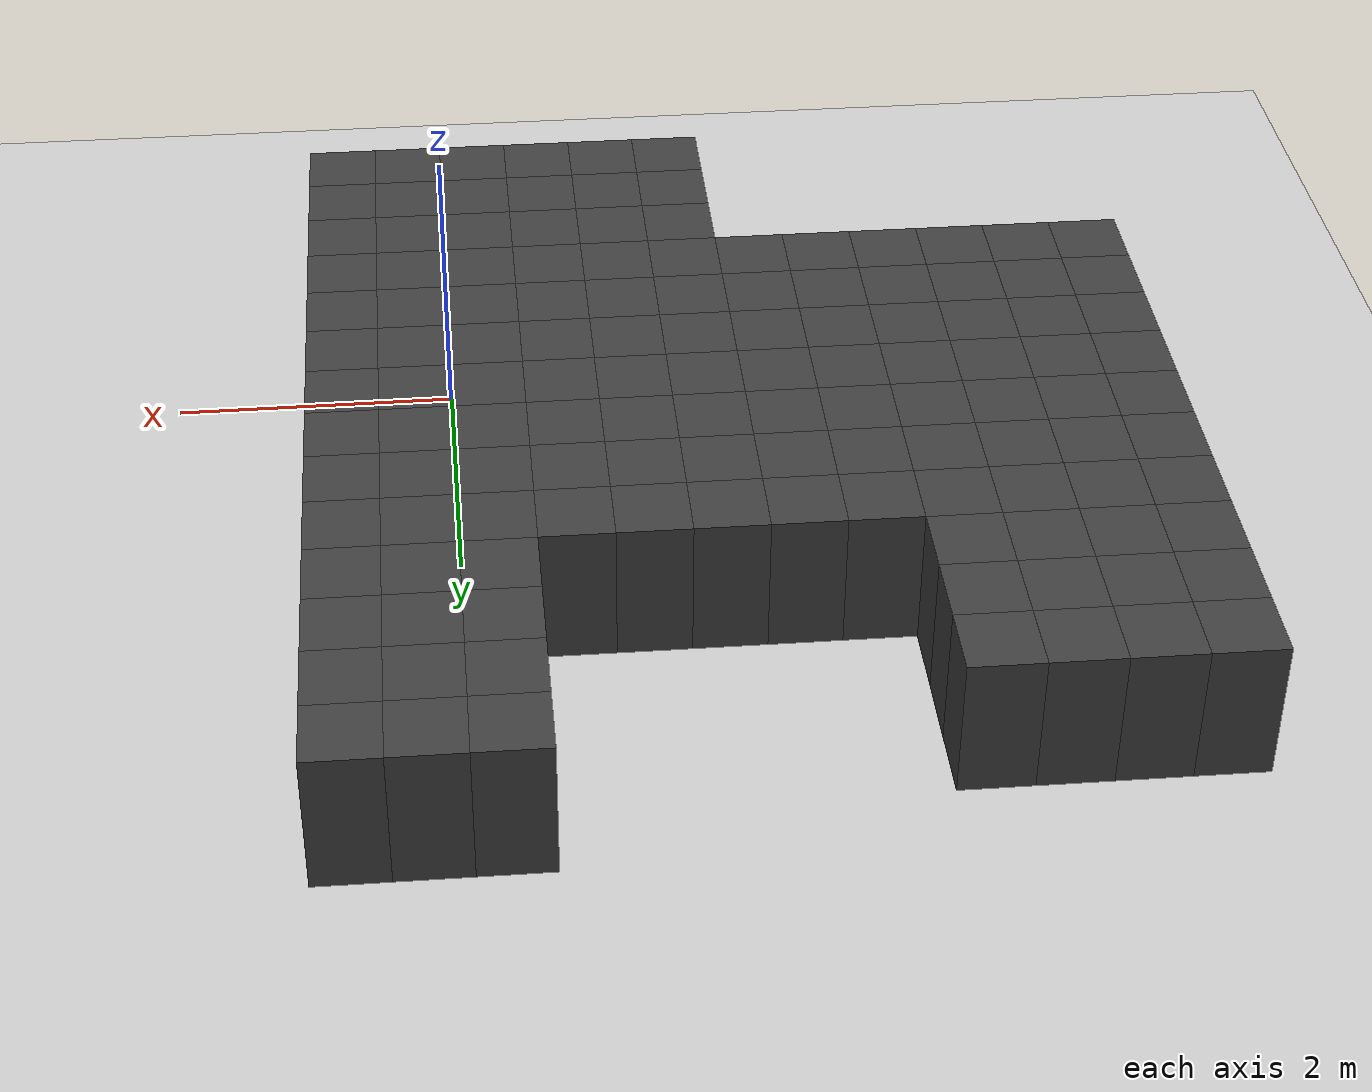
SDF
<sdf version="1.7">
 <world name="map_14495">
  <model name="ground_plane">
   <static>true</static>
   <link name="link">
    <collision name="collision">
     <geometry><plane><normal>0 0 1</normal><size>200 200</size></plane></geometry>
    </collision>
    <visual name="visual">
     <geometry><plane><normal>0 0 1</normal><size>200 200</size></plane></geometry>
     <material><ambient>0.8 0.8 0.8 1</ambient><diffuse>0.8 0.8 0.8 1</diffuse></material>
    </visual>
   </link>
  </model>
  <model name="maze_environment">
   <static>true</static>
   <link name="wall_572">
    <pose>-0.250 4.750 0.500 0 0 0</pose>
    <collision name="col"><geometry><box><size>0.5 0.5 1.0</size></box></geometry></collision>
    <visual name="vis">
     <geometry><box><size>0.5 0.5 1.0</size></box></geometry>
     <material><ambient>0.15 0.15 0.15 1</ambient><diffuse>0.25 0.25 0.25 1</diffuse></material>
    </visual>
   </link>
   <link name="wall_573">
    <pose>0.250 4.750 0.500 0 0 0</pose>
    <collision name="col"><geometry><box><size>0.5 0.5 1.0</size></box></geometry></collision>
    <visual name="vis">
     <geometry><box><size>0.5 0.5 1.0</size></box></geometry>
     <material><ambient>0.15 0.15 0.15 1</ambient><diffuse>0.25 0.25 0.25 1</diffuse></material>
    </visual>
   </link>
   <link name="wall_574">
    <pose>0.750 4.750 0.500 0 0 0</pose>
    <collision name="col"><geometry><box><size>0.5 0.5 1.0</size></box></geometry></collision>
    <visual name="vis">
     <geometry><box><size>0.5 0.5 1.0</size></box></geometry>
     <material><ambient>0.15 0.15 0.15 1</ambient><diffuse>0.25 0.25 0.25 1</diffuse></material>
    </visual>
   </link>
   <link name="wall_604">
    <pose>-4.750 4.250 0.500 0 0 0</pose>
    <collision name="col"><geometry><box><size>0.5 0.5 1.0</size></box></geometry></collision>
    <visual name="vis">
     <geometry><box><size>0.5 0.5 1.0</size></box></geometry>
     <material><ambient>0.15 0.15 0.15 1</ambient><diffuse>0.25 0.25 0.25 1</diffuse></material>
    </visual>
   </link>
   <link name="wall_605">
    <pose>-4.250 4.250 0.500 0 0 0</pose>
    <collision name="col"><geometry><box><size>0.5 0.5 1.0</size></box></geometry></collision>
    <visual name="vis">
     <geometry><box><size>0.5 0.5 1.0</size></box></geometry>
     <material><ambient>0.15 0.15 0.15 1</ambient><diffuse>0.25 0.25 0.25 1</diffuse></material>
    </visual>
   </link>
   <link name="wall_606">
    <pose>-3.750 4.250 0.500 0 0 0</pose>
    <collision name="col"><geometry><box><size>0.5 0.5 1.0</size></box></geometry></collision>
    <visual name="vis">
     <geometry><box><size>0.5 0.5 1.0</size></box></geometry>
     <material><ambient>0.15 0.15 0.15 1</ambient><diffuse>0.25 0.25 0.25 1</diffuse></material>
    </visual>
   </link>
   <link name="wall_607">
    <pose>-3.250 4.250 0.500 0 0 0</pose>
    <collision name="col"><geometry><box><size>0.5 0.5 1.0</size></box></geometry></collision>
    <visual name="vis">
     <geometry><box><size>0.5 0.5 1.0</size></box></geometry>
     <material><ambient>0.15 0.15 0.15 1</ambient><diffuse>0.25 0.25 0.25 1</diffuse></material>
    </visual>
   </link>
   <link name="wall_608">
    <pose>-0.250 4.250 0.500 0 0 0</pose>
    <collision name="col"><geometry><box><size>0.5 0.5 1.0</size></box></geometry></collision>
    <visual name="vis">
     <geometry><box><size>0.5 0.5 1.0</size></box></geometry>
     <material><ambient>0.15 0.15 0.15 1</ambient><diffuse>0.25 0.25 0.25 1</diffuse></material>
    </visual>
   </link>
   <link name="wall_609">
    <pose>0.250 4.250 0.500 0 0 0</pose>
    <collision name="col"><geometry><box><size>0.5 0.5 1.0</size></box></geometry></collision>
    <visual name="vis">
     <geometry><box><size>0.5 0.5 1.0</size></box></geometry>
     <material><ambient>0.15 0.15 0.15 1</ambient><diffuse>0.25 0.25 0.25 1</diffuse></material>
    </visual>
   </link>
   <link name="wall_610">
    <pose>0.750 4.250 0.500 0 0 0</pose>
    <collision name="col"><geometry><box><size>0.5 0.5 1.0</size></box></geometry></collision>
    <visual name="vis">
     <geometry><box><size>0.5 0.5 1.0</size></box></geometry>
     <material><ambient>0.15 0.15 0.15 1</ambient><diffuse>0.25 0.25 0.25 1</diffuse></material>
    </visual>
   </link>
   <link name="wall_641">
    <pose>-4.750 3.750 0.500 0 0 0</pose>
    <collision name="col"><geometry><box><size>0.5 0.5 1.0</size></box></geometry></collision>
    <visual name="vis">
     <geometry><box><size>0.5 0.5 1.0</size></box></geometry>
     <material><ambient>0.15 0.15 0.15 1</ambient><diffuse>0.25 0.25 0.25 1</diffuse></material>
    </visual>
   </link>
   <link name="wall_642">
    <pose>-4.250 3.750 0.500 0 0 0</pose>
    <collision name="col"><geometry><box><size>0.5 0.5 1.0</size></box></geometry></collision>
    <visual name="vis">
     <geometry><box><size>0.5 0.5 1.0</size></box></geometry>
     <material><ambient>0.15 0.15 0.15 1</ambient><diffuse>0.25 0.25 0.25 1</diffuse></material>
    </visual>
   </link>
   <link name="wall_643">
    <pose>-3.750 3.750 0.500 0 0 0</pose>
    <collision name="col"><geometry><box><size>0.5 0.5 1.0</size></box></geometry></collision>
    <visual name="vis">
     <geometry><box><size>0.5 0.5 1.0</size></box></geometry>
     <material><ambient>0.15 0.15 0.15 1</ambient><diffuse>0.25 0.25 0.25 1</diffuse></material>
    </visual>
   </link>
   <link name="wall_644">
    <pose>-3.250 3.750 0.500 0 0 0</pose>
    <collision name="col"><geometry><box><size>0.5 0.5 1.0</size></box></geometry></collision>
    <visual name="vis">
     <geometry><box><size>0.5 0.5 1.0</size></box></geometry>
     <material><ambient>0.15 0.15 0.15 1</ambient><diffuse>0.25 0.25 0.25 1</diffuse></material>
    </visual>
   </link>
   <link name="wall_645">
    <pose>-0.250 3.750 0.500 0 0 0</pose>
    <collision name="col"><geometry><box><size>0.5 0.5 1.0</size></box></geometry></collision>
    <visual name="vis">
     <geometry><box><size>0.5 0.5 1.0</size></box></geometry>
     <material><ambient>0.15 0.15 0.15 1</ambient><diffuse>0.25 0.25 0.25 1</diffuse></material>
    </visual>
   </link>
   <link name="wall_646">
    <pose>0.250 3.750 0.500 0 0 0</pose>
    <collision name="col"><geometry><box><size>0.5 0.5 1.0</size></box></geometry></collision>
    <visual name="vis">
     <geometry><box><size>0.5 0.5 1.0</size></box></geometry>
     <material><ambient>0.15 0.15 0.15 1</ambient><diffuse>0.25 0.25 0.25 1</diffuse></material>
    </visual>
   </link>
   <link name="wall_647">
    <pose>0.750 3.750 0.500 0 0 0</pose>
    <collision name="col"><geometry><box><size>0.5 0.5 1.0</size></box></geometry></collision>
    <visual name="vis">
     <geometry><box><size>0.5 0.5 1.0</size></box></geometry>
     <material><ambient>0.15 0.15 0.15 1</ambient><diffuse>0.25 0.25 0.25 1</diffuse></material>
    </visual>
   </link>
   <link name="wall_680">
    <pose>-4.750 3.250 0.500 0 0 0</pose>
    <collision name="col"><geometry><box><size>0.5 0.5 1.0</size></box></geometry></collision>
    <visual name="vis">
     <geometry><box><size>0.5 0.5 1.0</size></box></geometry>
     <material><ambient>0.15 0.15 0.15 1</ambient><diffuse>0.25 0.25 0.25 1</diffuse></material>
    </visual>
   </link>
   <link name="wall_681">
    <pose>-4.250 3.250 0.500 0 0 0</pose>
    <collision name="col"><geometry><box><size>0.5 0.5 1.0</size></box></geometry></collision>
    <visual name="vis">
     <geometry><box><size>0.5 0.5 1.0</size></box></geometry>
     <material><ambient>0.15 0.15 0.15 1</ambient><diffuse>0.25 0.25 0.25 1</diffuse></material>
    </visual>
   </link>
   <link name="wall_682">
    <pose>-3.750 3.250 0.500 0 0 0</pose>
    <collision name="col"><geometry><box><size>0.5 0.5 1.0</size></box></geometry></collision>
    <visual name="vis">
     <geometry><box><size>0.5 0.5 1.0</size></box></geometry>
     <material><ambient>0.15 0.15 0.15 1</ambient><diffuse>0.25 0.25 0.25 1</diffuse></material>
    </visual>
   </link>
   <link name="wall_683">
    <pose>-3.250 3.250 0.500 0 0 0</pose>
    <collision name="col"><geometry><box><size>0.5 0.5 1.0</size></box></geometry></collision>
    <visual name="vis">
     <geometry><box><size>0.5 0.5 1.0</size></box></geometry>
     <material><ambient>0.15 0.15 0.15 1</ambient><diffuse>0.25 0.25 0.25 1</diffuse></material>
    </visual>
   </link>
   <link name="wall_684">
    <pose>-0.250 3.250 0.500 0 0 0</pose>
    <collision name="col"><geometry><box><size>0.5 0.5 1.0</size></box></geometry></collision>
    <visual name="vis">
     <geometry><box><size>0.5 0.5 1.0</size></box></geometry>
     <material><ambient>0.15 0.15 0.15 1</ambient><diffuse>0.25 0.25 0.25 1</diffuse></material>
    </visual>
   </link>
   <link name="wall_685">
    <pose>0.250 3.250 0.500 0 0 0</pose>
    <collision name="col"><geometry><box><size>0.5 0.5 1.0</size></box></geometry></collision>
    <visual name="vis">
     <geometry><box><size>0.5 0.5 1.0</size></box></geometry>
     <material><ambient>0.15 0.15 0.15 1</ambient><diffuse>0.25 0.25 0.25 1</diffuse></material>
    </visual>
   </link>
   <link name="wall_686">
    <pose>0.750 3.250 0.500 0 0 0</pose>
    <collision name="col"><geometry><box><size>0.5 0.5 1.0</size></box></geometry></collision>
    <visual name="vis">
     <geometry><box><size>0.5 0.5 1.0</size></box></geometry>
     <material><ambient>0.15 0.15 0.15 1</ambient><diffuse>0.25 0.25 0.25 1</diffuse></material>
    </visual>
   </link>
   <link name="wall_719">
    <pose>-4.750 2.750 0.500 0 0 0</pose>
    <collision name="col"><geometry><box><size>0.5 0.5 1.0</size></box></geometry></collision>
    <visual name="vis">
     <geometry><box><size>0.5 0.5 1.0</size></box></geometry>
     <material><ambient>0.15 0.15 0.15 1</ambient><diffuse>0.25 0.25 0.25 1</diffuse></material>
    </visual>
   </link>
   <link name="wall_720">
    <pose>-4.250 2.750 0.500 0 0 0</pose>
    <collision name="col"><geometry><box><size>0.5 0.5 1.0</size></box></geometry></collision>
    <visual name="vis">
     <geometry><box><size>0.5 0.5 1.0</size></box></geometry>
     <material><ambient>0.15 0.15 0.15 1</ambient><diffuse>0.25 0.25 0.25 1</diffuse></material>
    </visual>
   </link>
   <link name="wall_721">
    <pose>-3.750 2.750 0.500 0 0 0</pose>
    <collision name="col"><geometry><box><size>0.5 0.5 1.0</size></box></geometry></collision>
    <visual name="vis">
     <geometry><box><size>0.5 0.5 1.0</size></box></geometry>
     <material><ambient>0.15 0.15 0.15 1</ambient><diffuse>0.25 0.25 0.25 1</diffuse></material>
    </visual>
   </link>
   <link name="wall_722">
    <pose>-3.250 2.750 0.500 0 0 0</pose>
    <collision name="col"><geometry><box><size>0.5 0.5 1.0</size></box></geometry></collision>
    <visual name="vis">
     <geometry><box><size>0.5 0.5 1.0</size></box></geometry>
     <material><ambient>0.15 0.15 0.15 1</ambient><diffuse>0.25 0.25 0.25 1</diffuse></material>
    </visual>
   </link>
   <link name="wall_723">
    <pose>-2.750 2.750 0.500 0 0 0</pose>
    <collision name="col"><geometry><box><size>0.5 0.5 1.0</size></box></geometry></collision>
    <visual name="vis">
     <geometry><box><size>0.5 0.5 1.0</size></box></geometry>
     <material><ambient>0.15 0.15 0.15 1</ambient><diffuse>0.25 0.25 0.25 1</diffuse></material>
    </visual>
   </link>
   <link name="wall_724">
    <pose>-2.250 2.750 0.500 0 0 0</pose>
    <collision name="col"><geometry><box><size>0.5 0.5 1.0</size></box></geometry></collision>
    <visual name="vis">
     <geometry><box><size>0.5 0.5 1.0</size></box></geometry>
     <material><ambient>0.15 0.15 0.15 1</ambient><diffuse>0.25 0.25 0.25 1</diffuse></material>
    </visual>
   </link>
   <link name="wall_725">
    <pose>-1.750 2.750 0.500 0 0 0</pose>
    <collision name="col"><geometry><box><size>0.5 0.5 1.0</size></box></geometry></collision>
    <visual name="vis">
     <geometry><box><size>0.5 0.5 1.0</size></box></geometry>
     <material><ambient>0.15 0.15 0.15 1</ambient><diffuse>0.25 0.25 0.25 1</diffuse></material>
    </visual>
   </link>
   <link name="wall_726">
    <pose>-1.250 2.750 0.500 0 0 0</pose>
    <collision name="col"><geometry><box><size>0.5 0.5 1.0</size></box></geometry></collision>
    <visual name="vis">
     <geometry><box><size>0.5 0.5 1.0</size></box></geometry>
     <material><ambient>0.15 0.15 0.15 1</ambient><diffuse>0.25 0.25 0.25 1</diffuse></material>
    </visual>
   </link>
   <link name="wall_727">
    <pose>-0.750 2.750 0.500 0 0 0</pose>
    <collision name="col"><geometry><box><size>0.5 0.5 1.0</size></box></geometry></collision>
    <visual name="vis">
     <geometry><box><size>0.5 0.5 1.0</size></box></geometry>
     <material><ambient>0.15 0.15 0.15 1</ambient><diffuse>0.25 0.25 0.25 1</diffuse></material>
    </visual>
   </link>
   <link name="wall_728">
    <pose>-0.250 2.750 0.500 0 0 0</pose>
    <collision name="col"><geometry><box><size>0.5 0.5 1.0</size></box></geometry></collision>
    <visual name="vis">
     <geometry><box><size>0.5 0.5 1.0</size></box></geometry>
     <material><ambient>0.15 0.15 0.15 1</ambient><diffuse>0.25 0.25 0.25 1</diffuse></material>
    </visual>
   </link>
   <link name="wall_729">
    <pose>0.250 2.750 0.500 0 0 0</pose>
    <collision name="col"><geometry><box><size>0.5 0.5 1.0</size></box></geometry></collision>
    <visual name="vis">
     <geometry><box><size>0.5 0.5 1.0</size></box></geometry>
     <material><ambient>0.15 0.15 0.15 1</ambient><diffuse>0.25 0.25 0.25 1</diffuse></material>
    </visual>
   </link>
   <link name="wall_730">
    <pose>0.750 2.750 0.500 0 0 0</pose>
    <collision name="col"><geometry><box><size>0.5 0.5 1.0</size></box></geometry></collision>
    <visual name="vis">
     <geometry><box><size>0.5 0.5 1.0</size></box></geometry>
     <material><ambient>0.15 0.15 0.15 1</ambient><diffuse>0.25 0.25 0.25 1</diffuse></material>
    </visual>
   </link>
   <link name="wall_763">
    <pose>-4.750 2.250 0.500 0 0 0</pose>
    <collision name="col"><geometry><box><size>0.5 0.5 1.0</size></box></geometry></collision>
    <visual name="vis">
     <geometry><box><size>0.5 0.5 1.0</size></box></geometry>
     <material><ambient>0.15 0.15 0.15 1</ambient><diffuse>0.25 0.25 0.25 1</diffuse></material>
    </visual>
   </link>
   <link name="wall_764">
    <pose>-4.250 2.250 0.500 0 0 0</pose>
    <collision name="col"><geometry><box><size>0.5 0.5 1.0</size></box></geometry></collision>
    <visual name="vis">
     <geometry><box><size>0.5 0.5 1.0</size></box></geometry>
     <material><ambient>0.15 0.15 0.15 1</ambient><diffuse>0.25 0.25 0.25 1</diffuse></material>
    </visual>
   </link>
   <link name="wall_765">
    <pose>-3.750 2.250 0.500 0 0 0</pose>
    <collision name="col"><geometry><box><size>0.5 0.5 1.0</size></box></geometry></collision>
    <visual name="vis">
     <geometry><box><size>0.5 0.5 1.0</size></box></geometry>
     <material><ambient>0.15 0.15 0.15 1</ambient><diffuse>0.25 0.25 0.25 1</diffuse></material>
    </visual>
   </link>
   <link name="wall_766">
    <pose>-3.250 2.250 0.500 0 0 0</pose>
    <collision name="col"><geometry><box><size>0.5 0.5 1.0</size></box></geometry></collision>
    <visual name="vis">
     <geometry><box><size>0.5 0.5 1.0</size></box></geometry>
     <material><ambient>0.15 0.15 0.15 1</ambient><diffuse>0.25 0.25 0.25 1</diffuse></material>
    </visual>
   </link>
   <link name="wall_767">
    <pose>-2.750 2.250 0.500 0 0 0</pose>
    <collision name="col"><geometry><box><size>0.5 0.5 1.0</size></box></geometry></collision>
    <visual name="vis">
     <geometry><box><size>0.5 0.5 1.0</size></box></geometry>
     <material><ambient>0.15 0.15 0.15 1</ambient><diffuse>0.25 0.25 0.25 1</diffuse></material>
    </visual>
   </link>
   <link name="wall_768">
    <pose>-2.250 2.250 0.500 0 0 0</pose>
    <collision name="col"><geometry><box><size>0.5 0.5 1.0</size></box></geometry></collision>
    <visual name="vis">
     <geometry><box><size>0.5 0.5 1.0</size></box></geometry>
     <material><ambient>0.15 0.15 0.15 1</ambient><diffuse>0.25 0.25 0.25 1</diffuse></material>
    </visual>
   </link>
   <link name="wall_769">
    <pose>-1.750 2.250 0.500 0 0 0</pose>
    <collision name="col"><geometry><box><size>0.5 0.5 1.0</size></box></geometry></collision>
    <visual name="vis">
     <geometry><box><size>0.5 0.5 1.0</size></box></geometry>
     <material><ambient>0.15 0.15 0.15 1</ambient><diffuse>0.25 0.25 0.25 1</diffuse></material>
    </visual>
   </link>
   <link name="wall_770">
    <pose>-1.250 2.250 0.500 0 0 0</pose>
    <collision name="col"><geometry><box><size>0.5 0.5 1.0</size></box></geometry></collision>
    <visual name="vis">
     <geometry><box><size>0.5 0.5 1.0</size></box></geometry>
     <material><ambient>0.15 0.15 0.15 1</ambient><diffuse>0.25 0.25 0.25 1</diffuse></material>
    </visual>
   </link>
   <link name="wall_771">
    <pose>-0.750 2.250 0.500 0 0 0</pose>
    <collision name="col"><geometry><box><size>0.5 0.5 1.0</size></box></geometry></collision>
    <visual name="vis">
     <geometry><box><size>0.5 0.5 1.0</size></box></geometry>
     <material><ambient>0.15 0.15 0.15 1</ambient><diffuse>0.25 0.25 0.25 1</diffuse></material>
    </visual>
   </link>
   <link name="wall_772">
    <pose>-0.250 2.250 0.500 0 0 0</pose>
    <collision name="col"><geometry><box><size>0.5 0.5 1.0</size></box></geometry></collision>
    <visual name="vis">
     <geometry><box><size>0.5 0.5 1.0</size></box></geometry>
     <material><ambient>0.15 0.15 0.15 1</ambient><diffuse>0.25 0.25 0.25 1</diffuse></material>
    </visual>
   </link>
   <link name="wall_773">
    <pose>0.250 2.250 0.500 0 0 0</pose>
    <collision name="col"><geometry><box><size>0.5 0.5 1.0</size></box></geometry></collision>
    <visual name="vis">
     <geometry><box><size>0.5 0.5 1.0</size></box></geometry>
     <material><ambient>0.15 0.15 0.15 1</ambient><diffuse>0.25 0.25 0.25 1</diffuse></material>
    </visual>
   </link>
   <link name="wall_774">
    <pose>0.750 2.250 0.500 0 0 0</pose>
    <collision name="col"><geometry><box><size>0.5 0.5 1.0</size></box></geometry></collision>
    <visual name="vis">
     <geometry><box><size>0.5 0.5 1.0</size></box></geometry>
     <material><ambient>0.15 0.15 0.15 1</ambient><diffuse>0.25 0.25 0.25 1</diffuse></material>
    </visual>
   </link>
   <link name="wall_807">
    <pose>-4.750 1.750 0.500 0 0 0</pose>
    <collision name="col"><geometry><box><size>0.5 0.5 1.0</size></box></geometry></collision>
    <visual name="vis">
     <geometry><box><size>0.5 0.5 1.0</size></box></geometry>
     <material><ambient>0.15 0.15 0.15 1</ambient><diffuse>0.25 0.25 0.25 1</diffuse></material>
    </visual>
   </link>
   <link name="wall_808">
    <pose>-4.250 1.750 0.500 0 0 0</pose>
    <collision name="col"><geometry><box><size>0.5 0.5 1.0</size></box></geometry></collision>
    <visual name="vis">
     <geometry><box><size>0.5 0.5 1.0</size></box></geometry>
     <material><ambient>0.15 0.15 0.15 1</ambient><diffuse>0.25 0.25 0.25 1</diffuse></material>
    </visual>
   </link>
   <link name="wall_809">
    <pose>-3.750 1.750 0.500 0 0 0</pose>
    <collision name="col"><geometry><box><size>0.5 0.5 1.0</size></box></geometry></collision>
    <visual name="vis">
     <geometry><box><size>0.5 0.5 1.0</size></box></geometry>
     <material><ambient>0.15 0.15 0.15 1</ambient><diffuse>0.25 0.25 0.25 1</diffuse></material>
    </visual>
   </link>
   <link name="wall_810">
    <pose>-3.250 1.750 0.500 0 0 0</pose>
    <collision name="col"><geometry><box><size>0.5 0.5 1.0</size></box></geometry></collision>
    <visual name="vis">
     <geometry><box><size>0.5 0.5 1.0</size></box></geometry>
     <material><ambient>0.15 0.15 0.15 1</ambient><diffuse>0.25 0.25 0.25 1</diffuse></material>
    </visual>
   </link>
   <link name="wall_811">
    <pose>-2.750 1.750 0.500 0 0 0</pose>
    <collision name="col"><geometry><box><size>0.5 0.5 1.0</size></box></geometry></collision>
    <visual name="vis">
     <geometry><box><size>0.5 0.5 1.0</size></box></geometry>
     <material><ambient>0.15 0.15 0.15 1</ambient><diffuse>0.25 0.25 0.25 1</diffuse></material>
    </visual>
   </link>
   <link name="wall_812">
    <pose>-2.250 1.750 0.500 0 0 0</pose>
    <collision name="col"><geometry><box><size>0.5 0.5 1.0</size></box></geometry></collision>
    <visual name="vis">
     <geometry><box><size>0.5 0.5 1.0</size></box></geometry>
     <material><ambient>0.15 0.15 0.15 1</ambient><diffuse>0.25 0.25 0.25 1</diffuse></material>
    </visual>
   </link>
   <link name="wall_813">
    <pose>-1.750 1.750 0.500 0 0 0</pose>
    <collision name="col"><geometry><box><size>0.5 0.5 1.0</size></box></geometry></collision>
    <visual name="vis">
     <geometry><box><size>0.5 0.5 1.0</size></box></geometry>
     <material><ambient>0.15 0.15 0.15 1</ambient><diffuse>0.25 0.25 0.25 1</diffuse></material>
    </visual>
   </link>
   <link name="wall_814">
    <pose>-1.250 1.750 0.500 0 0 0</pose>
    <collision name="col"><geometry><box><size>0.5 0.5 1.0</size></box></geometry></collision>
    <visual name="vis">
     <geometry><box><size>0.5 0.5 1.0</size></box></geometry>
     <material><ambient>0.15 0.15 0.15 1</ambient><diffuse>0.25 0.25 0.25 1</diffuse></material>
    </visual>
   </link>
   <link name="wall_815">
    <pose>-0.750 1.750 0.500 0 0 0</pose>
    <collision name="col"><geometry><box><size>0.5 0.5 1.0</size></box></geometry></collision>
    <visual name="vis">
     <geometry><box><size>0.5 0.5 1.0</size></box></geometry>
     <material><ambient>0.15 0.15 0.15 1</ambient><diffuse>0.25 0.25 0.25 1</diffuse></material>
    </visual>
   </link>
   <link name="wall_816">
    <pose>-0.250 1.750 0.500 0 0 0</pose>
    <collision name="col"><geometry><box><size>0.5 0.5 1.0</size></box></geometry></collision>
    <visual name="vis">
     <geometry><box><size>0.5 0.5 1.0</size></box></geometry>
     <material><ambient>0.15 0.15 0.15 1</ambient><diffuse>0.25 0.25 0.25 1</diffuse></material>
    </visual>
   </link>
   <link name="wall_817">
    <pose>0.250 1.750 0.500 0 0 0</pose>
    <collision name="col"><geometry><box><size>0.5 0.5 1.0</size></box></geometry></collision>
    <visual name="vis">
     <geometry><box><size>0.5 0.5 1.0</size></box></geometry>
     <material><ambient>0.15 0.15 0.15 1</ambient><diffuse>0.25 0.25 0.25 1</diffuse></material>
    </visual>
   </link>
   <link name="wall_818">
    <pose>0.750 1.750 0.500 0 0 0</pose>
    <collision name="col"><geometry><box><size>0.5 0.5 1.0</size></box></geometry></collision>
    <visual name="vis">
     <geometry><box><size>0.5 0.5 1.0</size></box></geometry>
     <material><ambient>0.15 0.15 0.15 1</ambient><diffuse>0.25 0.25 0.25 1</diffuse></material>
    </visual>
   </link>
   <link name="wall_841">
    <pose>-4.750 1.250 0.500 0 0 0</pose>
    <collision name="col"><geometry><box><size>0.5 0.5 1.0</size></box></geometry></collision>
    <visual name="vis">
     <geometry><box><size>0.5 0.5 1.0</size></box></geometry>
     <material><ambient>0.15 0.15 0.15 1</ambient><diffuse>0.25 0.25 0.25 1</diffuse></material>
    </visual>
   </link>
   <link name="wall_842">
    <pose>-4.250 1.250 0.500 0 0 0</pose>
    <collision name="col"><geometry><box><size>0.5 0.5 1.0</size></box></geometry></collision>
    <visual name="vis">
     <geometry><box><size>0.5 0.5 1.0</size></box></geometry>
     <material><ambient>0.15 0.15 0.15 1</ambient><diffuse>0.25 0.25 0.25 1</diffuse></material>
    </visual>
   </link>
   <link name="wall_843">
    <pose>-3.750 1.250 0.500 0 0 0</pose>
    <collision name="col"><geometry><box><size>0.5 0.5 1.0</size></box></geometry></collision>
    <visual name="vis">
     <geometry><box><size>0.5 0.5 1.0</size></box></geometry>
     <material><ambient>0.15 0.15 0.15 1</ambient><diffuse>0.25 0.25 0.25 1</diffuse></material>
    </visual>
   </link>
   <link name="wall_844">
    <pose>-3.250 1.250 0.500 0 0 0</pose>
    <collision name="col"><geometry><box><size>0.5 0.5 1.0</size></box></geometry></collision>
    <visual name="vis">
     <geometry><box><size>0.5 0.5 1.0</size></box></geometry>
     <material><ambient>0.15 0.15 0.15 1</ambient><diffuse>0.25 0.25 0.25 1</diffuse></material>
    </visual>
   </link>
   <link name="wall_845">
    <pose>-2.750 1.250 0.500 0 0 0</pose>
    <collision name="col"><geometry><box><size>0.5 0.5 1.0</size></box></geometry></collision>
    <visual name="vis">
     <geometry><box><size>0.5 0.5 1.0</size></box></geometry>
     <material><ambient>0.15 0.15 0.15 1</ambient><diffuse>0.25 0.25 0.25 1</diffuse></material>
    </visual>
   </link>
   <link name="wall_846">
    <pose>-2.250 1.250 0.500 0 0 0</pose>
    <collision name="col"><geometry><box><size>0.5 0.5 1.0</size></box></geometry></collision>
    <visual name="vis">
     <geometry><box><size>0.5 0.5 1.0</size></box></geometry>
     <material><ambient>0.15 0.15 0.15 1</ambient><diffuse>0.25 0.25 0.25 1</diffuse></material>
    </visual>
   </link>
   <link name="wall_847">
    <pose>-1.750 1.250 0.500 0 0 0</pose>
    <collision name="col"><geometry><box><size>0.5 0.5 1.0</size></box></geometry></collision>
    <visual name="vis">
     <geometry><box><size>0.5 0.5 1.0</size></box></geometry>
     <material><ambient>0.15 0.15 0.15 1</ambient><diffuse>0.25 0.25 0.25 1</diffuse></material>
    </visual>
   </link>
   <link name="wall_848">
    <pose>-1.250 1.250 0.500 0 0 0</pose>
    <collision name="col"><geometry><box><size>0.5 0.5 1.0</size></box></geometry></collision>
    <visual name="vis">
     <geometry><box><size>0.5 0.5 1.0</size></box></geometry>
     <material><ambient>0.15 0.15 0.15 1</ambient><diffuse>0.25 0.25 0.25 1</diffuse></material>
    </visual>
   </link>
   <link name="wall_849">
    <pose>-0.750 1.250 0.500 0 0 0</pose>
    <collision name="col"><geometry><box><size>0.5 0.5 1.0</size></box></geometry></collision>
    <visual name="vis">
     <geometry><box><size>0.5 0.5 1.0</size></box></geometry>
     <material><ambient>0.15 0.15 0.15 1</ambient><diffuse>0.25 0.25 0.25 1</diffuse></material>
    </visual>
   </link>
   <link name="wall_850">
    <pose>-0.250 1.250 0.500 0 0 0</pose>
    <collision name="col"><geometry><box><size>0.5 0.5 1.0</size></box></geometry></collision>
    <visual name="vis">
     <geometry><box><size>0.5 0.5 1.0</size></box></geometry>
     <material><ambient>0.15 0.15 0.15 1</ambient><diffuse>0.25 0.25 0.25 1</diffuse></material>
    </visual>
   </link>
   <link name="wall_851">
    <pose>0.250 1.250 0.500 0 0 0</pose>
    <collision name="col"><geometry><box><size>0.5 0.5 1.0</size></box></geometry></collision>
    <visual name="vis">
     <geometry><box><size>0.5 0.5 1.0</size></box></geometry>
     <material><ambient>0.15 0.15 0.15 1</ambient><diffuse>0.25 0.25 0.25 1</diffuse></material>
    </visual>
   </link>
   <link name="wall_852">
    <pose>0.750 1.250 0.500 0 0 0</pose>
    <collision name="col"><geometry><box><size>0.5 0.5 1.0</size></box></geometry></collision>
    <visual name="vis">
     <geometry><box><size>0.5 0.5 1.0</size></box></geometry>
     <material><ambient>0.15 0.15 0.15 1</ambient><diffuse>0.25 0.25 0.25 1</diffuse></material>
    </visual>
   </link>
   <link name="wall_875">
    <pose>-4.750 0.750 0.500 0 0 0</pose>
    <collision name="col"><geometry><box><size>0.5 0.5 1.0</size></box></geometry></collision>
    <visual name="vis">
     <geometry><box><size>0.5 0.5 1.0</size></box></geometry>
     <material><ambient>0.15 0.15 0.15 1</ambient><diffuse>0.25 0.25 0.25 1</diffuse></material>
    </visual>
   </link>
   <link name="wall_876">
    <pose>-4.250 0.750 0.500 0 0 0</pose>
    <collision name="col"><geometry><box><size>0.5 0.5 1.0</size></box></geometry></collision>
    <visual name="vis">
     <geometry><box><size>0.5 0.5 1.0</size></box></geometry>
     <material><ambient>0.15 0.15 0.15 1</ambient><diffuse>0.25 0.25 0.25 1</diffuse></material>
    </visual>
   </link>
   <link name="wall_877">
    <pose>-3.750 0.750 0.500 0 0 0</pose>
    <collision name="col"><geometry><box><size>0.5 0.5 1.0</size></box></geometry></collision>
    <visual name="vis">
     <geometry><box><size>0.5 0.5 1.0</size></box></geometry>
     <material><ambient>0.15 0.15 0.15 1</ambient><diffuse>0.25 0.25 0.25 1</diffuse></material>
    </visual>
   </link>
   <link name="wall_878">
    <pose>-3.250 0.750 0.500 0 0 0</pose>
    <collision name="col"><geometry><box><size>0.5 0.5 1.0</size></box></geometry></collision>
    <visual name="vis">
     <geometry><box><size>0.5 0.5 1.0</size></box></geometry>
     <material><ambient>0.15 0.15 0.15 1</ambient><diffuse>0.25 0.25 0.25 1</diffuse></material>
    </visual>
   </link>
   <link name="wall_879">
    <pose>-2.750 0.750 0.500 0 0 0</pose>
    <collision name="col"><geometry><box><size>0.5 0.5 1.0</size></box></geometry></collision>
    <visual name="vis">
     <geometry><box><size>0.5 0.5 1.0</size></box></geometry>
     <material><ambient>0.15 0.15 0.15 1</ambient><diffuse>0.25 0.25 0.25 1</diffuse></material>
    </visual>
   </link>
   <link name="wall_880">
    <pose>-2.250 0.750 0.500 0 0 0</pose>
    <collision name="col"><geometry><box><size>0.5 0.5 1.0</size></box></geometry></collision>
    <visual name="vis">
     <geometry><box><size>0.5 0.5 1.0</size></box></geometry>
     <material><ambient>0.15 0.15 0.15 1</ambient><diffuse>0.25 0.25 0.25 1</diffuse></material>
    </visual>
   </link>
   <link name="wall_881">
    <pose>-1.750 0.750 0.500 0 0 0</pose>
    <collision name="col"><geometry><box><size>0.5 0.5 1.0</size></box></geometry></collision>
    <visual name="vis">
     <geometry><box><size>0.5 0.5 1.0</size></box></geometry>
     <material><ambient>0.15 0.15 0.15 1</ambient><diffuse>0.25 0.25 0.25 1</diffuse></material>
    </visual>
   </link>
   <link name="wall_882">
    <pose>-1.250 0.750 0.500 0 0 0</pose>
    <collision name="col"><geometry><box><size>0.5 0.5 1.0</size></box></geometry></collision>
    <visual name="vis">
     <geometry><box><size>0.5 0.5 1.0</size></box></geometry>
     <material><ambient>0.15 0.15 0.15 1</ambient><diffuse>0.25 0.25 0.25 1</diffuse></material>
    </visual>
   </link>
   <link name="wall_883">
    <pose>-0.750 0.750 0.500 0 0 0</pose>
    <collision name="col"><geometry><box><size>0.5 0.5 1.0</size></box></geometry></collision>
    <visual name="vis">
     <geometry><box><size>0.5 0.5 1.0</size></box></geometry>
     <material><ambient>0.15 0.15 0.15 1</ambient><diffuse>0.25 0.25 0.25 1</diffuse></material>
    </visual>
   </link>
   <link name="wall_884">
    <pose>-0.250 0.750 0.500 0 0 0</pose>
    <collision name="col"><geometry><box><size>0.5 0.5 1.0</size></box></geometry></collision>
    <visual name="vis">
     <geometry><box><size>0.5 0.5 1.0</size></box></geometry>
     <material><ambient>0.15 0.15 0.15 1</ambient><diffuse>0.25 0.25 0.25 1</diffuse></material>
    </visual>
   </link>
   <link name="wall_885">
    <pose>0.250 0.750 0.500 0 0 0</pose>
    <collision name="col"><geometry><box><size>0.5 0.5 1.0</size></box></geometry></collision>
    <visual name="vis">
     <geometry><box><size>0.5 0.5 1.0</size></box></geometry>
     <material><ambient>0.15 0.15 0.15 1</ambient><diffuse>0.25 0.25 0.25 1</diffuse></material>
    </visual>
   </link>
   <link name="wall_886">
    <pose>0.750 0.750 0.500 0 0 0</pose>
    <collision name="col"><geometry><box><size>0.5 0.5 1.0</size></box></geometry></collision>
    <visual name="vis">
     <geometry><box><size>0.5 0.5 1.0</size></box></geometry>
     <material><ambient>0.15 0.15 0.15 1</ambient><diffuse>0.25 0.25 0.25 1</diffuse></material>
    </visual>
   </link>
   <link name="wall_914">
    <pose>-4.750 0.250 0.500 0 0 0</pose>
    <collision name="col"><geometry><box><size>0.5 0.5 1.0</size></box></geometry></collision>
    <visual name="vis">
     <geometry><box><size>0.5 0.5 1.0</size></box></geometry>
     <material><ambient>0.15 0.15 0.15 1</ambient><diffuse>0.25 0.25 0.25 1</diffuse></material>
    </visual>
   </link>
   <link name="wall_915">
    <pose>-4.250 0.250 0.500 0 0 0</pose>
    <collision name="col"><geometry><box><size>0.5 0.5 1.0</size></box></geometry></collision>
    <visual name="vis">
     <geometry><box><size>0.5 0.5 1.0</size></box></geometry>
     <material><ambient>0.15 0.15 0.15 1</ambient><diffuse>0.25 0.25 0.25 1</diffuse></material>
    </visual>
   </link>
   <link name="wall_916">
    <pose>-3.750 0.250 0.500 0 0 0</pose>
    <collision name="col"><geometry><box><size>0.5 0.5 1.0</size></box></geometry></collision>
    <visual name="vis">
     <geometry><box><size>0.5 0.5 1.0</size></box></geometry>
     <material><ambient>0.15 0.15 0.15 1</ambient><diffuse>0.25 0.25 0.25 1</diffuse></material>
    </visual>
   </link>
   <link name="wall_917">
    <pose>-3.250 0.250 0.500 0 0 0</pose>
    <collision name="col"><geometry><box><size>0.5 0.5 1.0</size></box></geometry></collision>
    <visual name="vis">
     <geometry><box><size>0.5 0.5 1.0</size></box></geometry>
     <material><ambient>0.15 0.15 0.15 1</ambient><diffuse>0.25 0.25 0.25 1</diffuse></material>
    </visual>
   </link>
   <link name="wall_918">
    <pose>-2.750 0.250 0.500 0 0 0</pose>
    <collision name="col"><geometry><box><size>0.5 0.5 1.0</size></box></geometry></collision>
    <visual name="vis">
     <geometry><box><size>0.5 0.5 1.0</size></box></geometry>
     <material><ambient>0.15 0.15 0.15 1</ambient><diffuse>0.25 0.25 0.25 1</diffuse></material>
    </visual>
   </link>
   <link name="wall_919">
    <pose>-2.250 0.250 0.500 0 0 0</pose>
    <collision name="col"><geometry><box><size>0.5 0.5 1.0</size></box></geometry></collision>
    <visual name="vis">
     <geometry><box><size>0.5 0.5 1.0</size></box></geometry>
     <material><ambient>0.15 0.15 0.15 1</ambient><diffuse>0.25 0.25 0.25 1</diffuse></material>
    </visual>
   </link>
   <link name="wall_920">
    <pose>-1.750 0.250 0.500 0 0 0</pose>
    <collision name="col"><geometry><box><size>0.5 0.5 1.0</size></box></geometry></collision>
    <visual name="vis">
     <geometry><box><size>0.5 0.5 1.0</size></box></geometry>
     <material><ambient>0.15 0.15 0.15 1</ambient><diffuse>0.25 0.25 0.25 1</diffuse></material>
    </visual>
   </link>
   <link name="wall_921">
    <pose>-1.250 0.250 0.500 0 0 0</pose>
    <collision name="col"><geometry><box><size>0.5 0.5 1.0</size></box></geometry></collision>
    <visual name="vis">
     <geometry><box><size>0.5 0.5 1.0</size></box></geometry>
     <material><ambient>0.15 0.15 0.15 1</ambient><diffuse>0.25 0.25 0.25 1</diffuse></material>
    </visual>
   </link>
   <link name="wall_922">
    <pose>-0.750 0.250 0.500 0 0 0</pose>
    <collision name="col"><geometry><box><size>0.5 0.5 1.0</size></box></geometry></collision>
    <visual name="vis">
     <geometry><box><size>0.5 0.5 1.0</size></box></geometry>
     <material><ambient>0.15 0.15 0.15 1</ambient><diffuse>0.25 0.25 0.25 1</diffuse></material>
    </visual>
   </link>
   <link name="wall_923">
    <pose>-0.250 0.250 0.500 0 0 0</pose>
    <collision name="col"><geometry><box><size>0.5 0.5 1.0</size></box></geometry></collision>
    <visual name="vis">
     <geometry><box><size>0.5 0.5 1.0</size></box></geometry>
     <material><ambient>0.15 0.15 0.15 1</ambient><diffuse>0.25 0.25 0.25 1</diffuse></material>
    </visual>
   </link>
   <link name="wall_924">
    <pose>0.250 0.250 0.500 0 0 0</pose>
    <collision name="col"><geometry><box><size>0.5 0.5 1.0</size></box></geometry></collision>
    <visual name="vis">
     <geometry><box><size>0.5 0.5 1.0</size></box></geometry>
     <material><ambient>0.15 0.15 0.15 1</ambient><diffuse>0.25 0.25 0.25 1</diffuse></material>
    </visual>
   </link>
   <link name="wall_925">
    <pose>0.750 0.250 0.500 0 0 0</pose>
    <collision name="col"><geometry><box><size>0.5 0.5 1.0</size></box></geometry></collision>
    <visual name="vis">
     <geometry><box><size>0.5 0.5 1.0</size></box></geometry>
     <material><ambient>0.15 0.15 0.15 1</ambient><diffuse>0.25 0.25 0.25 1</diffuse></material>
    </visual>
   </link>
   <link name="wall_948">
    <pose>-4.750 -0.250 0.500 0 0 0</pose>
    <collision name="col"><geometry><box><size>0.5 0.5 1.0</size></box></geometry></collision>
    <visual name="vis">
     <geometry><box><size>0.5 0.5 1.0</size></box></geometry>
     <material><ambient>0.15 0.15 0.15 1</ambient><diffuse>0.25 0.25 0.25 1</diffuse></material>
    </visual>
   </link>
   <link name="wall_949">
    <pose>-4.250 -0.250 0.500 0 0 0</pose>
    <collision name="col"><geometry><box><size>0.5 0.5 1.0</size></box></geometry></collision>
    <visual name="vis">
     <geometry><box><size>0.5 0.5 1.0</size></box></geometry>
     <material><ambient>0.15 0.15 0.15 1</ambient><diffuse>0.25 0.25 0.25 1</diffuse></material>
    </visual>
   </link>
   <link name="wall_950">
    <pose>-3.750 -0.250 0.500 0 0 0</pose>
    <collision name="col"><geometry><box><size>0.5 0.5 1.0</size></box></geometry></collision>
    <visual name="vis">
     <geometry><box><size>0.5 0.5 1.0</size></box></geometry>
     <material><ambient>0.15 0.15 0.15 1</ambient><diffuse>0.25 0.25 0.25 1</diffuse></material>
    </visual>
   </link>
   <link name="wall_951">
    <pose>-3.250 -0.250 0.500 0 0 0</pose>
    <collision name="col"><geometry><box><size>0.5 0.5 1.0</size></box></geometry></collision>
    <visual name="vis">
     <geometry><box><size>0.5 0.5 1.0</size></box></geometry>
     <material><ambient>0.15 0.15 0.15 1</ambient><diffuse>0.25 0.25 0.25 1</diffuse></material>
    </visual>
   </link>
   <link name="wall_952">
    <pose>-2.750 -0.250 0.500 0 0 0</pose>
    <collision name="col"><geometry><box><size>0.5 0.5 1.0</size></box></geometry></collision>
    <visual name="vis">
     <geometry><box><size>0.5 0.5 1.0</size></box></geometry>
     <material><ambient>0.15 0.15 0.15 1</ambient><diffuse>0.25 0.25 0.25 1</diffuse></material>
    </visual>
   </link>
   <link name="wall_953">
    <pose>-2.250 -0.250 0.500 0 0 0</pose>
    <collision name="col"><geometry><box><size>0.5 0.5 1.0</size></box></geometry></collision>
    <visual name="vis">
     <geometry><box><size>0.5 0.5 1.0</size></box></geometry>
     <material><ambient>0.15 0.15 0.15 1</ambient><diffuse>0.25 0.25 0.25 1</diffuse></material>
    </visual>
   </link>
   <link name="wall_954">
    <pose>-1.750 -0.250 0.500 0 0 0</pose>
    <collision name="col"><geometry><box><size>0.5 0.5 1.0</size></box></geometry></collision>
    <visual name="vis">
     <geometry><box><size>0.5 0.5 1.0</size></box></geometry>
     <material><ambient>0.15 0.15 0.15 1</ambient><diffuse>0.25 0.25 0.25 1</diffuse></material>
    </visual>
   </link>
   <link name="wall_955">
    <pose>-1.250 -0.250 0.500 0 0 0</pose>
    <collision name="col"><geometry><box><size>0.5 0.5 1.0</size></box></geometry></collision>
    <visual name="vis">
     <geometry><box><size>0.5 0.5 1.0</size></box></geometry>
     <material><ambient>0.15 0.15 0.15 1</ambient><diffuse>0.25 0.25 0.25 1</diffuse></material>
    </visual>
   </link>
   <link name="wall_956">
    <pose>-0.750 -0.250 0.500 0 0 0</pose>
    <collision name="col"><geometry><box><size>0.5 0.5 1.0</size></box></geometry></collision>
    <visual name="vis">
     <geometry><box><size>0.5 0.5 1.0</size></box></geometry>
     <material><ambient>0.15 0.15 0.15 1</ambient><diffuse>0.25 0.25 0.25 1</diffuse></material>
    </visual>
   </link>
   <link name="wall_957">
    <pose>-0.250 -0.250 0.500 0 0 0</pose>
    <collision name="col"><geometry><box><size>0.5 0.5 1.0</size></box></geometry></collision>
    <visual name="vis">
     <geometry><box><size>0.5 0.5 1.0</size></box></geometry>
     <material><ambient>0.15 0.15 0.15 1</ambient><diffuse>0.25 0.25 0.25 1</diffuse></material>
    </visual>
   </link>
   <link name="wall_958">
    <pose>0.250 -0.250 0.500 0 0 0</pose>
    <collision name="col"><geometry><box><size>0.5 0.5 1.0</size></box></geometry></collision>
    <visual name="vis">
     <geometry><box><size>0.5 0.5 1.0</size></box></geometry>
     <material><ambient>0.15 0.15 0.15 1</ambient><diffuse>0.25 0.25 0.25 1</diffuse></material>
    </visual>
   </link>
   <link name="wall_959">
    <pose>0.750 -0.250 0.500 0 0 0</pose>
    <collision name="col"><geometry><box><size>0.5 0.5 1.0</size></box></geometry></collision>
    <visual name="vis">
     <geometry><box><size>0.5 0.5 1.0</size></box></geometry>
     <material><ambient>0.15 0.15 0.15 1</ambient><diffuse>0.25 0.25 0.25 1</diffuse></material>
    </visual>
   </link>
   <link name="wall_975">
    <pose>-1.750 -0.750 0.500 0 0 0</pose>
    <collision name="col"><geometry><box><size>0.5 0.5 1.0</size></box></geometry></collision>
    <visual name="vis">
     <geometry><box><size>0.5 0.5 1.0</size></box></geometry>
     <material><ambient>0.15 0.15 0.15 1</ambient><diffuse>0.25 0.25 0.25 1</diffuse></material>
    </visual>
   </link>
   <link name="wall_976">
    <pose>-1.250 -0.750 0.500 0 0 0</pose>
    <collision name="col"><geometry><box><size>0.5 0.5 1.0</size></box></geometry></collision>
    <visual name="vis">
     <geometry><box><size>0.5 0.5 1.0</size></box></geometry>
     <material><ambient>0.15 0.15 0.15 1</ambient><diffuse>0.25 0.25 0.25 1</diffuse></material>
    </visual>
   </link>
   <link name="wall_977">
    <pose>-0.750 -0.750 0.500 0 0 0</pose>
    <collision name="col"><geometry><box><size>0.5 0.5 1.0</size></box></geometry></collision>
    <visual name="vis">
     <geometry><box><size>0.5 0.5 1.0</size></box></geometry>
     <material><ambient>0.15 0.15 0.15 1</ambient><diffuse>0.25 0.25 0.25 1</diffuse></material>
    </visual>
   </link>
   <link name="wall_978">
    <pose>-0.250 -0.750 0.500 0 0 0</pose>
    <collision name="col"><geometry><box><size>0.5 0.5 1.0</size></box></geometry></collision>
    <visual name="vis">
     <geometry><box><size>0.5 0.5 1.0</size></box></geometry>
     <material><ambient>0.15 0.15 0.15 1</ambient><diffuse>0.25 0.25 0.25 1</diffuse></material>
    </visual>
   </link>
   <link name="wall_979">
    <pose>0.250 -0.750 0.500 0 0 0</pose>
    <collision name="col"><geometry><box><size>0.5 0.5 1.0</size></box></geometry></collision>
    <visual name="vis">
     <geometry><box><size>0.5 0.5 1.0</size></box></geometry>
     <material><ambient>0.15 0.15 0.15 1</ambient><diffuse>0.25 0.25 0.25 1</diffuse></material>
    </visual>
   </link>
   <link name="wall_980">
    <pose>0.750 -0.750 0.500 0 0 0</pose>
    <collision name="col"><geometry><box><size>0.5 0.5 1.0</size></box></geometry></collision>
    <visual name="vis">
     <geometry><box><size>0.5 0.5 1.0</size></box></geometry>
     <material><ambient>0.15 0.15 0.15 1</ambient><diffuse>0.25 0.25 0.25 1</diffuse></material>
    </visual>
   </link>
   <link name="wall_1001">
    <pose>-1.750 -1.250 0.500 0 0 0</pose>
    <collision name="col"><geometry><box><size>0.5 0.5 1.0</size></box></geometry></collision>
    <visual name="vis">
     <geometry><box><size>0.5 0.5 1.0</size></box></geometry>
     <material><ambient>0.15 0.15 0.15 1</ambient><diffuse>0.25 0.25 0.25 1</diffuse></material>
    </visual>
   </link>
   <link name="wall_1002">
    <pose>-1.250 -1.250 0.500 0 0 0</pose>
    <collision name="col"><geometry><box><size>0.5 0.5 1.0</size></box></geometry></collision>
    <visual name="vis">
     <geometry><box><size>0.5 0.5 1.0</size></box></geometry>
     <material><ambient>0.15 0.15 0.15 1</ambient><diffuse>0.25 0.25 0.25 1</diffuse></material>
    </visual>
   </link>
   <link name="wall_1003">
    <pose>-0.750 -1.250 0.500 0 0 0</pose>
    <collision name="col"><geometry><box><size>0.5 0.5 1.0</size></box></geometry></collision>
    <visual name="vis">
     <geometry><box><size>0.5 0.5 1.0</size></box></geometry>
     <material><ambient>0.15 0.15 0.15 1</ambient><diffuse>0.25 0.25 0.25 1</diffuse></material>
    </visual>
   </link>
   <link name="wall_1004">
    <pose>-0.250 -1.250 0.500 0 0 0</pose>
    <collision name="col"><geometry><box><size>0.5 0.5 1.0</size></box></geometry></collision>
    <visual name="vis">
     <geometry><box><size>0.5 0.5 1.0</size></box></geometry>
     <material><ambient>0.15 0.15 0.15 1</ambient><diffuse>0.25 0.25 0.25 1</diffuse></material>
    </visual>
   </link>
   <link name="wall_1005">
    <pose>0.250 -1.250 0.500 0 0 0</pose>
    <collision name="col"><geometry><box><size>0.5 0.5 1.0</size></box></geometry></collision>
    <visual name="vis">
     <geometry><box><size>0.5 0.5 1.0</size></box></geometry>
     <material><ambient>0.15 0.15 0.15 1</ambient><diffuse>0.25 0.25 0.25 1</diffuse></material>
    </visual>
   </link>
   <link name="wall_1006">
    <pose>0.750 -1.250 0.500 0 0 0</pose>
    <collision name="col"><geometry><box><size>0.5 0.5 1.0</size></box></geometry></collision>
    <visual name="vis">
     <geometry><box><size>0.5 0.5 1.0</size></box></geometry>
     <material><ambient>0.15 0.15 0.15 1</ambient><diffuse>0.25 0.25 0.25 1</diffuse></material>
    </visual>
   </link>
   <link name="wall_1027">
    <pose>-1.750 -1.750 0.500 0 0 0</pose>
    <collision name="col"><geometry><box><size>0.5 0.5 1.0</size></box></geometry></collision>
    <visual name="vis">
     <geometry><box><size>0.5 0.5 1.0</size></box></geometry>
     <material><ambient>0.15 0.15 0.15 1</ambient><diffuse>0.25 0.25 0.25 1</diffuse></material>
    </visual>
   </link>
   <link name="wall_1028">
    <pose>-1.250 -1.750 0.500 0 0 0</pose>
    <collision name="col"><geometry><box><size>0.5 0.5 1.0</size></box></geometry></collision>
    <visual name="vis">
     <geometry><box><size>0.5 0.5 1.0</size></box></geometry>
     <material><ambient>0.15 0.15 0.15 1</ambient><diffuse>0.25 0.25 0.25 1</diffuse></material>
    </visual>
   </link>
   <link name="wall_1029">
    <pose>-0.750 -1.750 0.500 0 0 0</pose>
    <collision name="col"><geometry><box><size>0.5 0.5 1.0</size></box></geometry></collision>
    <visual name="vis">
     <geometry><box><size>0.5 0.5 1.0</size></box></geometry>
     <material><ambient>0.15 0.15 0.15 1</ambient><diffuse>0.25 0.25 0.25 1</diffuse></material>
    </visual>
   </link>
   <link name="wall_1030">
    <pose>-0.250 -1.750 0.500 0 0 0</pose>
    <collision name="col"><geometry><box><size>0.5 0.5 1.0</size></box></geometry></collision>
    <visual name="vis">
     <geometry><box><size>0.5 0.5 1.0</size></box></geometry>
     <material><ambient>0.15 0.15 0.15 1</ambient><diffuse>0.25 0.25 0.25 1</diffuse></material>
    </visual>
   </link>
   <link name="wall_1031">
    <pose>0.250 -1.750 0.500 0 0 0</pose>
    <collision name="col"><geometry><box><size>0.5 0.5 1.0</size></box></geometry></collision>
    <visual name="vis">
     <geometry><box><size>0.5 0.5 1.0</size></box></geometry>
     <material><ambient>0.15 0.15 0.15 1</ambient><diffuse>0.25 0.25 0.25 1</diffuse></material>
    </visual>
   </link>
   <link name="wall_1032">
    <pose>0.750 -1.750 0.500 0 0 0</pose>
    <collision name="col"><geometry><box><size>0.5 0.5 1.0</size></box></geometry></collision>
    <visual name="vis">
     <geometry><box><size>0.5 0.5 1.0</size></box></geometry>
     <material><ambient>0.15 0.15 0.15 1</ambient><diffuse>0.25 0.25 0.25 1</diffuse></material>
    </visual>
   </link>
  </model>
 </world>
</sdf>
